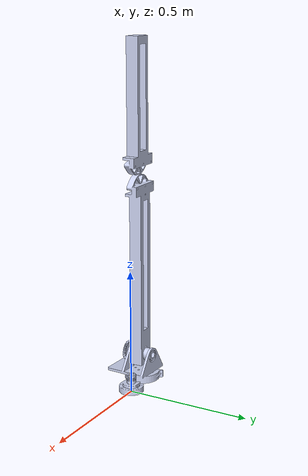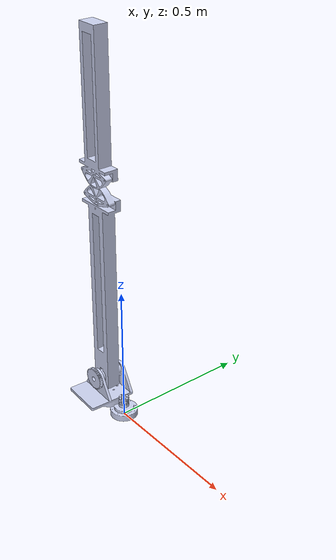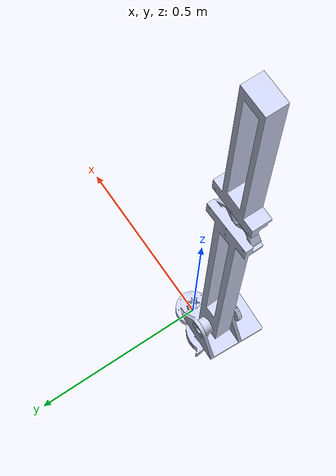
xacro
<?xml version="1.0"?>
<robot xmlns:xacro="http://www.ros.org/wiki/xacro" name="robotic_arm_1">

  <!-- Properties for links and joints -->
  <xacro:property name="arm_base_link_mass" value="0.252551886669556"/>
  <xacro:property name="capstan_arm_link_mass" value="0.709466626058235"/>
  <xacro:property name="arm_link_1_mass" value="2.02559987896371"/>
  <xacro:property name="arm_link_2_mass" value="1.03057802437217"/>

  <xacro:property name="arm_base_link_ixx" value="0.000150902038596133"/>
  <xacro:property name="arm_base_link_ixy" value="0"/>
  <xacro:property name="arm_base_link_ixz" value="4.39682919984636E-07"/>
  <xacro:property name="arm_base_link_iyy" value="0.000150053189033015"/>
  <xacro:property name="arm_base_link_iyz" value="0"/>
  <xacro:property name="arm_base_link_izz" value="0.000253108560055644"/>

  <xacro:property name="capstan_arm_ixx" value="0.00165051336508958"/>
  <xacro:property name="capstan_arm_ixy" value="2.46957606770886E-05"/>
  <xacro:property name="capstan_arm_ixz" value="4.63627043374479E-06"/>
  <xacro:property name="capstan_arm_iyy" value="0.00111101449924064"/>
  <xacro:property name="capstan_arm_iyz" value="-0.000105517085889965"/>
  <xacro:property name="capstan_arm_izz" value="0.00236018957372939"/>

  <xacro:property name="arm_link_1_ixx" value="0.0122955056364337"/>
  <xacro:property name="arm_link_1_ixy" value="1.37460312510447E-05"/>
  <xacro:property name="arm_link_1_ixz" value="-9.58057581347945E-07"/>
  <xacro:property name="arm_link_1_iyy" value="0.012829700926555"/>
  <xacro:property name="arm_link_1_iyz" value="-3.72564629302058E-05"/>
  <xacro:property name="arm_link_1_izz" value="0.00154118844811022"/>

  <xacro:property name="arm_link_2_ixx" value="0.00633876312594691"/>
  <xacro:property name="arm_link_2_ixy" value="-4.16173532851258E-19"/>
  <xacro:property name="arm_link_2_ixz" value="-5.83484875325359E-19"/>
  <xacro:property name="arm_link_2_iyy" value="0.00713091971056394"/>
  <xacro:property name="arm_link_2_iyz" value="6.36398687437939E-05"/>
  <xacro:property name="arm_link_2_izz" value="0.00119228700277233"/>

  <!-- Define links -->
  <link name="arm_base_link">
    <inertial>
      <origin xyz="-0.00010245634218275 2.45859996157774E-06 0.0214724928778274" rpy="0 0 0"/>
      <mass value="${arm_base_link_mass}"/>
      <inertia ixx="${arm_base_link_ixx}" ixy="${arm_base_link_ixy}" ixz="${arm_base_link_ixz}" iyy="${arm_base_link_iyy}" iyz="${arm_base_link_iyz}" izz="${arm_base_link_izz}"/>
    </inertial>
    <visual>
      <origin xyz="0 0 0" rpy="1.5708 0 0"/>
      <geometry>
        <mesh filename="package://robotic_arm_1/meshes/arm_base_link.STL"/>
      </geometry>
      <material name="">
        <color rgba="0.792156862745098 0.819607843137255 0.933333333333333 1"/>
      </material>
    </visual>
    <collision>
      <origin xyz="0 0 0" rpy="0 0 0"/>
      <geometry>
        <mesh filename="package://robotic_arm_1/meshes/arm_base_link.STL"/>
      </geometry>
    </collision>
  </link>

  <link name="Capstan_arm_link">
    <inertial>
      <origin xyz="0.0070643032220165 -0.0122764637999162 0.0362543103918512" rpy="0 0 0"/>
      <mass value="${capstan_arm_link_mass}"/>
      <inertia ixx="${capstan_arm_ixx}" ixy="${capstan_arm_ixy}" ixz="${capstan_arm_ixz}" iyy="${capstan_arm_iyy}" iyz="${capstan_arm_iyy}" izz="${capstan_arm_izz}"/>
    </inertial>
    <visual>
      <origin xyz="0.09 0 -0.06" rpy="1.5708 0 -1.5708"/>
      <geometry>
        <mesh filename="package://robotic_arm_1/meshes/Capstan_arm_link.STL"/>
      </geometry>
      <material name="">
        <color rgba="0.792156862745098 0.819607843137255 0.933333333333333 1"/>
      </material>
    </visual>
    <collision>
      <origin xyz="0 0 0" rpy="0 0 0"/>
      <geometry>
        <mesh filename="package://robotic_arm_1/meshes/Capstan_arm_link.STL"/>
      </geometry>
    </collision>
  </link>

  <!-- Define joints -->
  <joint name="Joint_1_Capstan" type="revolute">
    <origin xyz="-0.08825 0 0.0435" rpy="0 0 -0.045315"/>
    <parent link="arm_base_link"/>
    <child link="Capstan_arm_link"/>
    <axis xyz="0 0 -1"/>
    <limit lower="-1.4" upper="1.4" effort="36" velocity="0.2"/>
  </joint>

  <link name="arm_link_1">
    <inertial>
      <origin xyz="-1.90466102472087E-05 -0.00074067503085362 0.312950666881576" rpy="0 0 0"/>
      <mass value="${arm_link_1_mass}"/>
      <inertia ixx="${arm_link_1_ixx}" ixy="${arm_link_1_ixy}" ixz="${arm_link_1_ixz}" iyy="${arm_link_1_iyy}" iyz="${arm_link_1_iyz}" izz="${arm_link_1_izz}"/>
    </inertial>
    <visual>
      <origin xyz="0.09 0 -0.16" rpy="1.5708 0 -1.5708"/>
      <geometry>
        <mesh filename="package://robotic_arm_1/meshes/arm_link_1.STL"/>
      </geometry>
      <material name="">
        <color rgba="0.792156862745098 0.819607843137255 0.933333333333333 1"/>
      </material>
    </visual>
    <collision>
      <origin xyz="0 0 0" rpy="0 0 0"/>
      <geometry>
        <mesh filename="package://robotic_arm_1/meshes/arm_link_1.STL"/>
      </geometry>
    </collision>
  </link>

  <joint name="arm_link_1_joint" type="revolute">
    <origin xyz="0.0001812 -0.0039959 0.104" rpy="0 0 0.071024"/>
    <parent link="Capstan_arm_link"/>
    <child link="arm_link_1"/>
    <axis xyz="-0.025707 -0.99967 0"/>
    <limit lower="-0.5" upper="1.4" effort="25" velocity="0.1"/>
  </joint>

  <link name="arm_link_2">
    <inertial>
      <origin xyz="-3.23352455922077E-15 0.00799925604693499 0.246348425307334" rpy="0 0 0"/>
      <mass value="${arm_link_2_mass}"/>
      <inertia ixx="${arm_link_2_ixx}" ixy="${arm_link_2_ixy}" ixz="${arm_link_2_ixz}" iyy="${arm_link_2_iyy}" iyz="${arm_link_2_iyz}" izz="${arm_link_2_izz}"/>
    </inertial>
    <visual>
      <origin xyz="0.091 0 -0.9" rpy="1.5708 0 -1.5708"/>
      <geometry>
        <mesh filename="package://robotic_arm_1/meshes/arm_link_2.STL"/>
      </geometry>
      <material name="">
        <color rgba="0.792156862745098 0.819607843137255 0.933333333333333 1"/>
      </material>
    </visual>
    <collision>
      <origin xyz="0 0 0" rpy="0 0 0"/>
      <geometry>
        <mesh filename="package://robotic_arm_1/meshes/arm_link_2.STL"/>
      </geometry>
    </collision>
  </link>

  <joint name="arm_link_2_joint" type="revolute">
    <origin xyz="-0.0001928 -0.0074975 0.73665" rpy="0 0 -0.02571"/>
    <parent link="arm_link_1"/>
    <child link="arm_link_2"/>
    <axis xyz="0 -1 0"/>
    <limit lower="-1.4" upper="1.4" effort="12" velocity="0.15"/>
  </joint>

</robot>
